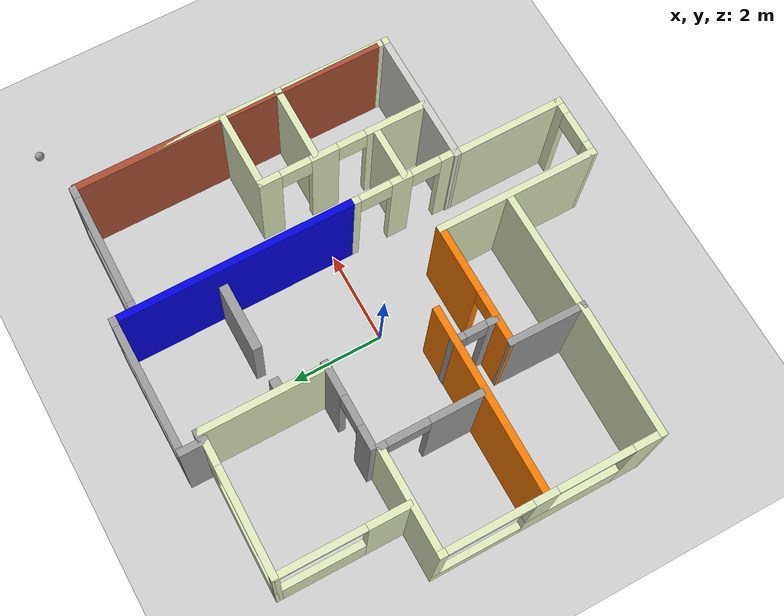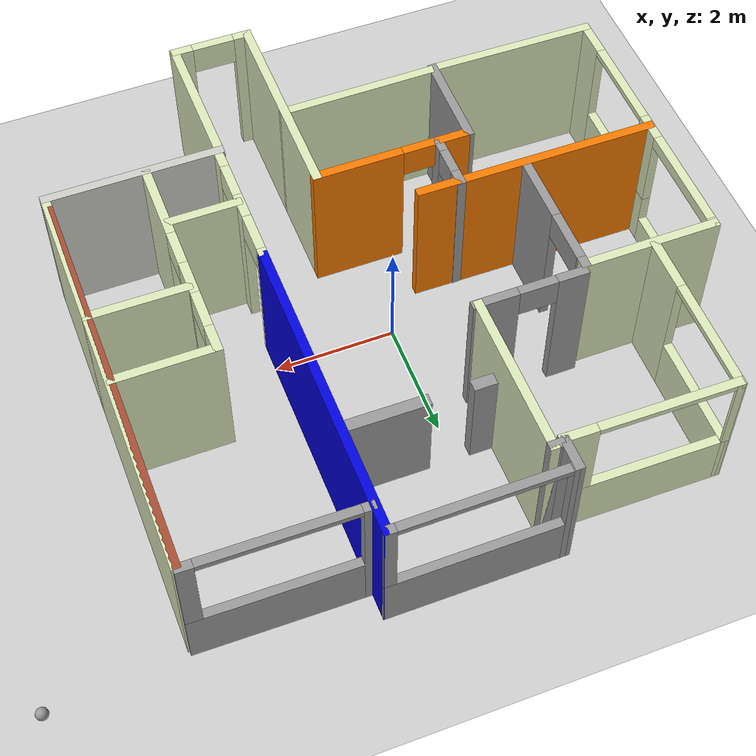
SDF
<sdf version="1.6">
 <world name="default">
  <model name="ground_plane">
   <static>1</static>
   <link name="link">
    <collision name="collision">
     <geometry><plane><normal>0 0 1</normal><size>100 100</size></plane></geometry>
     <surface><friction><ode><mu>100</mu><mu2>50</mu2></ode></friction></surface>
    </collision>
    <visual name="visual">
     <cast_shadows>0</cast_shadows>
     <geometry><plane><normal>0 0 1</normal><size>100 100</size></plane></geometry>
     <material>
      <script><uri>file://media/materials/scripts/gazebo.material</uri><name>Gazebo/Grey</name></script>
     </material>
    </visual>
   </link>
  </model>
  <model name="condo-2">
   <pose>0.03173 -0.150345 0 0 -0 0</pose>
   <link name="Wall_1">
    <collision name="Wall_1_Collision">
     <geometry><box><size>6.75 0.15 2.5</size></box></geometry>
     <pose>0 0 1.25 0 -0 0</pose>
    </collision>
    <visual name="Wall_1_Visual">
     <pose>0 0 1.25 0 -0 0</pose>
     <geometry><box><size>6.75 0.15 2.5</size></box></geometry>
     <material>
      <script><uri>file://media/materials/scripts/gazebo.material</uri><name>Gazebo/Bricks</name></script>
      <ambient>1 1 1 1</ambient>
     </material>
     <meta><layer>0</layer></meta>
    </visual>
    <pose>4.74151 1.02898 0 0 0 -1.5708</pose>
   </link>
   <link name="Wall_10">
    <collision name="Wall_10_Collision">
     <geometry><box><size>1.68411 0.15 2.5</size></box></geometry>
     <pose>0 0 1.25 0 -0 0</pose>
    </collision>
    <visual name="Wall_10_Visual">
     <pose>0 0 1.25 0 -0 0</pose>
     <geometry><box><size>1.68411 0.15 2.5</size></box></geometry>
     <material>
      <script><uri>file://media/materials/scripts/gazebo.material</uri><name>Gazebo/Grey</name></script>
      <ambient>1 1 1 1</ambient>
     </material>
     <meta><layer>0</layer></meta>
    </visual>
    <pose>-1.96752 -2.21739 0 0 0 -1.58289</pose>
   </link>
   <link name="Wall_11">
    <collision name="Wall_11_Collision">
     <geometry><box><size>2.91482 0.15 2.5</size></box></geometry>
     <pose>0 0 1.25 0 -0 0</pose>
    </collision>
    <visual name="Wall_11_Visual">
     <pose>0 0 1.25 0 -0 0</pose>
     <geometry><box><size>2.91482 0.15 2.5</size></box></geometry>
     <material>
      <script><uri>file://media/materials/scripts/gazebo.material</uri><name>Gazebo/Grey</name></script>
      <ambient>0.854902 0.901961 0.72549 1</ambient>
     </material>
     <meta><layer>0</layer></meta>
    </visual>
    <pose>-3.35881 -2.96461 0 0 -0 3.12724</pose>
   </link>
   <link name="Wall_12">
    <pose>-4.74082 -0.637006 0 0 -0 1.5708</pose>
    <visual name="Wall_12_Visual_0">
     <pose>-2.04278 0 1.25 0 -0 0</pose>
     <geometry><box><size>0.679963 0.15 2.5</size></box></geometry>
     <material>
      <script><uri>file://media/materials/scripts/gazebo.material</uri><name>Gazebo/Grey</name></script>
      <ambient>0.854902 0.901961 0.72549 1</ambient>
     </material>
     <meta><layer>0</layer></meta>
    </visual>
    <collision name="Wall_12_Collision_0">
     <geometry><box><size>0.679963 0.15 2.5</size></box></geometry>
     <pose>-2.04278 0 1.25 0 -0 0</pose>
    </collision>
    <visual name="Wall_12_Visual_1">
     <pose>-0.651319 0 0.5 0 -0 0</pose>
     <geometry><box><size>2.10296 0.15 1</size></box></geometry>
     <material>
      <script><uri>file://media/materials/scripts/gazebo.material</uri><name>Gazebo/Grey</name></script>
      <ambient>0.854902 0.901961 0.72549 1</ambient>
     </material>
     <meta><layer>0</layer></meta>
    </visual>
    <collision name="Wall_12_Collision_1">
     <geometry><box><size>2.10296 0.15 1</size></box></geometry>
     <pose>-0.651319 0 0.5 0 -0 0</pose>
    </collision>
    <visual name="Wall_12_Visual_2">
     <pose>1.39146 0 0.25 0 -0 0</pose>
     <geometry><box><size>1.9826 0.15 0.5</size></box></geometry>
     <material>
      <script><uri>file://media/materials/scripts/gazebo.material</uri><name>Gazebo/Grey</name></script>
      <ambient>0.854902 0.901961 0.72549 1</ambient>
     </material>
     <meta><layer>0</layer></meta>
    </visual>
    <collision name="Wall_12_Collision_2">
     <geometry><box><size>1.9826 0.15 0.5</size></box></geometry>
     <pose>1.39146 0 0.25 0 -0 0</pose>
    </collision>
    <visual name="Wall_12_Visual_3">
     <pose>2.29396 0 1.5 0 -0 0</pose>
     <geometry><box><size>0.1776 0.15 2</size></box></geometry>
     <material>
      <script><uri>file://media/materials/scripts/gazebo.material</uri><name>Gazebo/Grey</name></script>
      <ambient>0.854902 0.901961 0.72549 1</ambient>
     </material>
     <meta><layer>0</layer></meta>
    </visual>
    <collision name="Wall_12_Collision_3">
     <geometry><box><size>0.1776 0.15 2</size></box></geometry>
     <pose>2.29396 0 1.5 0 -0 0</pose>
    </collision>
    <visual name="Wall_12_Visual_4">
     <pose>0.152181 0 1.75 0 -0 0</pose>
     <geometry><box><size>0.495963 0.15 1.5</size></box></geometry>
     <material>
      <script><uri>file://media/materials/scripts/gazebo.material</uri><name>Gazebo/Grey</name></script>
      <ambient>0.854902 0.901961 0.72549 1</ambient>
     </material>
     <meta><layer>0</layer></meta>
    </visual>
    <collision name="Wall_12_Collision_4">
     <geometry><box><size>0.495963 0.15 1.5</size></box></geometry>
     <pose>0.152181 0 1.75 0 -0 0</pose>
    </collision>
    <visual name="Wall_12_Visual_5">
     <pose>1.30266 0 2.4 0 -0 0</pose>
     <geometry><box><size>1.805 0.15 0.2</size></box></geometry>
     <material>
      <script><uri>file://media/materials/scripts/gazebo.material</uri><name>Gazebo/Grey</name></script>
      <ambient>0.854902 0.901961 0.72549 1</ambient>
     </material>
     <meta><layer>0</layer></meta>
    </visual>
    <collision name="Wall_12_Collision_5">
     <geometry><box><size>1.805 0.15 0.2</size></box></geometry>
     <pose>1.30266 0 2.4 0 -0 0</pose>
    </collision>
    <visual name="Wall_12_Visual_6">
     <pose>-0.8993 0 2.45 0 -0 0</pose>
     <geometry><box><size>1.607 0.15 0.1</size></box></geometry>
     <material>
      <script><uri>file://media/materials/scripts/gazebo.material</uri><name>Gazebo/Grey</name></script>
      <ambient>0.854902 0.901961 0.72549 1</ambient>
     </material>
     <meta><layer>0</layer></meta>
    </visual>
    <collision name="Wall_12_Collision_6">
     <geometry><box><size>1.607 0.15 0.1</size></box></geometry>
     <pose>-0.8993 0 2.45 0 -0 0</pose>
    </collision>
   </link>
   <link name="Wall_13">
    <collision name="Wall_13_Collision">
     <geometry><box><size>2.34535 0.15 2.5</size></box></geometry>
     <pose>0 0 1.25 0 -0 0</pose>
    </collision>
    <visual name="Wall_13_Visual">
     <pose>0 0 1.25 0 -0 0</pose>
     <geometry><box><size>2.34535 0.15 2.5</size></box></geometry>
     <material>
      <script><uri>file://media/materials/scripts/gazebo.material</uri><name>Gazebo/Grey</name></script>
      <ambient>0.854902 0.901961 0.72549 1</ambient>
     </material>
     <meta><layer>0</layer></meta>
    </visual>
    <pose>-3.64314 1.67076 0 0 -0 0</pose>
   </link>
   <link name="Wall_15">
    <collision name="Wall_15_Collision">
     <geometry><box><size>2.75533 0.15 2.5</size></box></geometry>
     <pose>0 0 1.25 0 -0 0</pose>
    </collision>
    <visual name="Wall_15_Visual">
     <pose>0 0 1.25 0 -0 0</pose>
     <geometry><box><size>2.75533 0.15 2.5</size></box></geometry>
     <material>
      <script><uri>file://media/materials/scripts/gazebo.material</uri><name>Gazebo/Grey</name></script>
      <ambient>0.854902 0.901961 0.72549 1</ambient>
     </material>
     <meta><layer>0</layer></meta>
    </visual>
    <pose>-0.660906 -2.95138 0 0 0 -3.13652</pose>
   </link>
   <link name="Wall_17">
    <collision name="Wall_17_Collision">
     <geometry><box><size>4.10436 0.15 2.5</size></box></geometry>
     <pose>0 0 1.25 0 -0 0</pose>
    </collision>
    <visual name="Wall_17_Visual">
     <pose>0 0 1.25 0 -0 0</pose>
     <geometry><box><size>4.10436 0.15 2.5</size></box></geometry>
     <material>
      <script><uri>file://media/materials/scripts/gazebo.material</uri><name>Gazebo/Grey</name></script>
      <ambient>0.960784 0.478431 0 1</ambient>
     </material>
     <meta><layer>0</layer></meta>
    </visual>
    <pose>-2.75046 -0.537818 0 0 0 -0.006689</pose>
   </link>
   <link name="Wall_20">
    <pose>-3.70266 3.08583 0 0 -0 1.56589</pose>
    <visual name="Wall_20_Visual_0">
     <pose>-0.964016 0 1.25 0 -0 0</pose>
     <geometry><box><size>0.9199 0.15 2.5</size></box></geometry>
     <material>
      <script><uri>file://media/materials/scripts/gazebo.material</uri><name>Gazebo/Grey</name></script>
      <ambient>0.854902 0.901961 0.72549 1</ambient>
     </material>
     <meta><layer>0</layer></meta>
    </visual>
    <collision name="Wall_20_Collision_0">
     <geometry><box><size>0.9199 0.15 2.5</size></box></geometry>
     <pose>-0.964016 0 1.25 0 -0 0</pose>
    </collision>
    <visual name="Wall_20_Visual_1">
     <pose>0.45995 0 0.5 0 -0 0</pose>
     <geometry><box><size>1.92803 0.15 1</size></box></geometry>
     <material>
      <script><uri>file://media/materials/scripts/gazebo.material</uri><name>Gazebo/Grey</name></script>
      <ambient>0.854902 0.901961 0.72549 1</ambient>
     </material>
     <meta><layer>0</layer></meta>
    </visual>
    <collision name="Wall_20_Collision_1">
     <geometry><box><size>1.92803 0.15 1</size></box></geometry>
     <pose>0.45995 0 0.5 0 -0 0</pose>
    </collision>
    <visual name="Wall_20_Visual_2">
     <pose>1.39995 0 1.75 0 -0 0</pose>
     <geometry><box><size>0.048033 0.15 1.5</size></box></geometry>
     <material>
      <script><uri>file://media/materials/scripts/gazebo.material</uri><name>Gazebo/Grey</name></script>
      <ambient>0.854902 0.901961 0.72549 1</ambient>
     </material>
     <meta><layer>0</layer></meta>
    </visual>
    <collision name="Wall_20_Collision_2">
     <geometry><box><size>0.048033 0.15 1.5</size></box></geometry>
     <pose>1.39995 0 1.75 0 -0 0</pose>
    </collision>
    <visual name="Wall_20_Visual_3">
     <pose>0.435934 0 2.45 0 -0 0</pose>
     <geometry><box><size>1.88 0.15 0.1</size></box></geometry>
     <material>
      <script><uri>file://media/materials/scripts/gazebo.material</uri><name>Gazebo/Grey</name></script>
      <ambient>0.854902 0.901961 0.72549 1</ambient>
     </material>
     <meta><layer>0</layer></meta>
    </visual>
    <collision name="Wall_20_Collision_3">
     <geometry><box><size>1.88 0.15 0.1</size></box></geometry>
     <pose>0.435934 0 2.45 0 -0 0</pose>
    </collision>
   </link>
   <link name="Wall_21">
    <pose>-2.31403 4.41494 0 0 0 -0.014353</pose>
    <visual name="Wall_21_Visual_0">
     <pose>-1.44711 0 1.25 0 -0 0</pose>
     <geometry><box><size>0.020096 0.15 2.5</size></box></geometry>
     <material>
      <script><uri>file://media/materials/scripts/gazebo.material</uri><name>Gazebo/Grey</name></script>
      <ambient>0.854902 0.901961 0.72549 1</ambient>
     </material>
     <meta><layer>0</layer></meta>
    </visual>
    <collision name="Wall_21_Collision_0">
     <geometry><box><size>0.020096 0.15 2.5</size></box></geometry>
     <pose>-1.44711 0 1.25 0 -0 0</pose>
    </collision>
    <visual name="Wall_21_Visual_1">
     <pose>0.010048 0 0.5 0 -0 0</pose>
     <geometry><box><size>2.89421 0.15 1</size></box></geometry>
     <material>
      <script><uri>file://media/materials/scripts/gazebo.material</uri><name>Gazebo/Grey</name></script>
      <ambient>0.854902 0.901961 0.72549 1</ambient>
     </material>
     <meta><layer>0</layer></meta>
    </visual>
    <collision name="Wall_21_Collision_1">
     <geometry><box><size>2.89421 0.15 1</size></box></geometry>
     <pose>0.010048 0 0.5 0 -0 0</pose>
    </collision>
    <visual name="Wall_21_Visual_2">
     <pose>1.15505 0 1.75 0 -0 0</pose>
     <geometry><box><size>0.604214 0.15 1.5</size></box></geometry>
     <material>
      <script><uri>file://media/materials/scripts/gazebo.material</uri><name>Gazebo/Grey</name></script>
      <ambient>0.854902 0.901961 0.72549 1</ambient>
     </material>
     <meta><layer>0</layer></meta>
    </visual>
    <collision name="Wall_21_Collision_2">
     <geometry><box><size>0.604214 0.15 1.5</size></box></geometry>
     <pose>1.15505 0 1.75 0 -0 0</pose>
    </collision>
    <visual name="Wall_21_Visual_3">
     <pose>-0.292059 0 2.45 0 -0 0</pose>
     <geometry><box><size>2.29 0.15 0.1</size></box></geometry>
     <material>
      <script><uri>file://media/materials/scripts/gazebo.material</uri><name>Gazebo/Grey</name></script>
      <ambient>0.854902 0.901961 0.72549 1</ambient>
     </material>
     <meta><layer>0</layer></meta>
    </visual>
    <collision name="Wall_21_Collision_3">
     <geometry><box><size>2.29 0.15 0.1</size></box></geometry>
     <pose>-0.292059 0 2.45 0 -0 0</pose>
    </collision>
   </link>
   <link name="Wall_22">
    <collision name="Wall_22_Collision">
     <geometry><box><size>0.6261 0.15 2.5</size></box></geometry>
     <pose>0 0 1.25 0 -0 0</pose>
    </collision>
    <visual name="Wall_22_Visual">
     <pose>0 0 1.25 0 -0 0</pose>
     <geometry><box><size>0.6261 0.15 2.5</size></box></geometry>
     <material>
      <script><uri>file://media/materials/scripts/gazebo.material</uri><name>Gazebo/Grey</name></script>
      <ambient>1 1 1 1</ambient>
     </material>
     <meta><layer>0</layer></meta>
    </visual>
    <pose>-0.932018 4.63316 0 0 -0 1.5708</pose>
   </link>
   <link name="Wall_23">
    <pose>0.492994 4.87136 0 0 -0 0.000105</pose>
    <visual name="Wall_23_Visual_0">
     <pose>-1.41577 0 1.25 0 -0 0</pose>
     <geometry><box><size>0.168462 0.15 2.5</size></box></geometry>
     <material>
      <script><uri>file://media/materials/scripts/gazebo.material</uri><name>Gazebo/Grey</name></script>
      <ambient>1 1 1 1</ambient>
     </material>
     <meta><layer>0</layer></meta>
    </visual>
    <collision name="Wall_23_Collision_0">
     <geometry><box><size>0.168462 0.15 2.5</size></box></geometry>
     <pose>-1.41577 0 1.25 0 -0 0</pose>
    </collision>
    <visual name="Wall_23_Visual_1">
     <pose>0.084231 0 0.5 0 -0 0</pose>
     <geometry><box><size>2.83154 0.15 1</size></box></geometry>
     <material>
      <script><uri>file://media/materials/scripts/gazebo.material</uri><name>Gazebo/Grey</name></script>
      <ambient>1 1 1 1</ambient>
     </material>
     <meta><layer>0</layer></meta>
    </visual>
    <collision name="Wall_23_Collision_1">
     <geometry><box><size>2.83154 0.15 1</size></box></geometry>
     <pose>0.084231 0 0.5 0 -0 0</pose>
    </collision>
    <visual name="Wall_23_Visual_2">
     <pose>1.39923 0 1.75 0 -0 0</pose>
     <geometry><box><size>0.201538 0.15 1.5</size></box></geometry>
     <material>
      <script><uri>file://media/materials/scripts/gazebo.material</uri><name>Gazebo/Grey</name></script>
      <ambient>1 1 1 1</ambient>
     </material>
     <meta><layer>0</layer></meta>
    </visual>
    <collision name="Wall_23_Collision_2">
     <geometry><box><size>0.201538 0.15 1.5</size></box></geometry>
     <pose>1.39923 0 1.75 0 -0 0</pose>
    </collision>
    <visual name="Wall_23_Visual_3">
     <pose>-0.016538 0 2.45 0 -0 0</pose>
     <geometry><box><size>2.63 0.15 0.1</size></box></geometry>
     <material>
      <script><uri>file://media/materials/scripts/gazebo.material</uri><name>Gazebo/Grey</name></script>
      <ambient>1 1 1 1</ambient>
     </material>
     <meta><layer>0</layer></meta>
    </visual>
    <collision name="Wall_23_Collision_3">
     <geometry><box><size>2.63 0.15 0.1</size></box></geometry>
     <pose>-0.016538 0 2.45 0 -0 0</pose>
    </collision>
   </link>
   <link name="Wall_24">
    <collision name="Wall_24_Collision">
     <geometry><box><size>5.25485 0.15 2.5</size></box></geometry>
     <pose>0 0 1.25 0 -0 0</pose>
    </collision>
    <visual name="Wall_24_Visual">
     <pose>0 0 1.25 0 -0 0</pose>
     <geometry><box><size>5.25485 0.15 2.5</size></box></geometry>
     <material>
      <script><uri>file://media/materials/scripts/gazebo.material</uri><name>Gazebo/Grey</name></script>
      <ambient>0 0 0.866667 1</ambient>
     </material>
     <meta><layer>0</layer></meta>
    </visual>
    <pose>1.92151 2.31901 0 0 0 -1.56943</pose>
   </link>
   <link name="Wall_28">
    <pose>1.92458 -1.35359 0 0 0 -1.5708</pose>
    <visual name="Wall_28_Visual_0">
     <pose>-1.04991 0 1.25 0 -0 0</pose>
     <geometry><box><size>0.150175 0.15 2.5</size></box></geometry>
     <material>
      <script><uri>file://media/materials/scripts/gazebo.material</uri><name>Gazebo/Grey</name></script>
      <ambient>0.854902 0.901961 0.72549 1</ambient>
     </material>
     <meta><layer>0</layer></meta>
    </visual>
    <collision name="Wall_28_Collision_0">
     <geometry><box><size>0.150175 0.15 2.5</size></box></geometry>
     <pose>-1.04991 0 1.25 0 -0 0</pose>
    </collision>
    <visual name="Wall_28_Visual_1">
     <pose>-0.055337 0 1.25 0 -0 0</pose>
     <geometry><box><size>0.462175 0.15 2.5</size></box></geometry>
     <material>
      <script><uri>file://media/materials/scripts/gazebo.material</uri><name>Gazebo/Grey</name></script>
      <ambient>0.854902 0.901961 0.72549 1</ambient>
     </material>
     <meta><layer>0</layer></meta>
    </visual>
    <collision name="Wall_28_Collision_1">
     <geometry><box><size>0.462175 0.15 2.5</size></box></geometry>
     <pose>-0.055337 0 1.25 0 -0 0</pose>
    </collision>
    <visual name="Wall_28_Visual_2">
     <pose>0.968125 0 1.25 0 -0 0</pose>
     <geometry><box><size>0.31375 0.15 2.5</size></box></geometry>
     <material>
      <script><uri>file://media/materials/scripts/gazebo.material</uri><name>Gazebo/Grey</name></script>
      <ambient>0.854902 0.901961 0.72549 1</ambient>
     </material>
     <meta><layer>0</layer></meta>
    </visual>
    <collision name="Wall_28_Collision_2">
     <geometry><box><size>0.31375 0.15 2.5</size></box></geometry>
     <pose>0.968125 0 1.25 0 -0 0</pose>
    </collision>
    <visual name="Wall_28_Visual_3">
     <pose>-0.630625 0 2.25 0 -0 0</pose>
     <geometry><box><size>0.6884 0.15 0.5</size></box></geometry>
     <material>
      <script><uri>file://media/materials/scripts/gazebo.material</uri><name>Gazebo/Grey</name></script>
      <ambient>0.854902 0.901961 0.72549 1</ambient>
     </material>
     <meta><layer>0</layer></meta>
    </visual>
    <collision name="Wall_28_Collision_3">
     <geometry><box><size>0.6884 0.15 0.5</size></box></geometry>
     <pose>-0.630625 0 2.25 0 -0 0</pose>
    </collision>
    <visual name="Wall_28_Visual_4">
     <pose>0.4935 0 2.25 0 -0 0</pose>
     <geometry><box><size>0.6355 0.15 0.5</size></box></geometry>
     <material>
      <script><uri>file://media/materials/scripts/gazebo.material</uri><name>Gazebo/Grey</name></script>
      <ambient>0.854902 0.901961 0.72549 1</ambient>
     </material>
     <meta><layer>0</layer></meta>
    </visual>
    <collision name="Wall_28_Collision_4">
     <geometry><box><size>0.6355 0.15 0.5</size></box></geometry>
     <pose>0.4935 0 2.25 0 -0 0</pose>
    </collision>
   </link>
   <link name="Wall_3">
    <collision name="Wall_3_Collision">
     <geometry><box><size>7 0.15 2.5</size></box></geometry>
     <pose>0 0 1.25 0 -0 0</pose>
    </collision>
    <visual name="Wall_3_Visual">
     <pose>0 0 1.25 0 -0 0</pose>
     <geometry><box><size>7 0.15 2.5</size></box></geometry>
     <material>
      <script><uri>file://media/materials/scripts/gazebo.material</uri><name>Gazebo/Grey</name></script>
      <ambient>0.854902 0.901961 0.72549 1</ambient>
     </material>
     <meta><layer>0</layer></meta>
    </visual>
    <pose>4.74151 0.903982 0 0 0 -1.5708</pose>
   </link>
   <link name="Wall_31">
    <pose>3.34627 4.41494 0 0 0 -0.014492</pose>
    <visual name="Wall_31_Visual_0">
     <pose>-1.34195 0 1.25 0 -0 0</pose>
     <geometry><box><size>0.203956 0.15 2.5</size></box></geometry>
     <material>
      <script><uri>file://media/materials/scripts/gazebo.material</uri><name>Gazebo/Grey</name></script>
      <ambient>1 1 1 1</ambient>
     </material>
     <meta><layer>0</layer></meta>
    </visual>
    <collision name="Wall_31_Collision_0">
     <geometry><box><size>0.203956 0.15 2.5</size></box></geometry>
     <pose>-1.34195 0 1.25 0 -0 0</pose>
    </collision>
    <visual name="Wall_31_Visual_1">
     <pose>0.101978 0 0.5 0 -0 0</pose>
     <geometry><box><size>2.68391 0.15 1</size></box></geometry>
     <material>
      <script><uri>file://media/materials/scripts/gazebo.material</uri><name>Gazebo/Grey</name></script>
      <ambient>1 1 1 1</ambient>
     </material>
     <meta><layer>0</layer></meta>
    </visual>
    <collision name="Wall_31_Collision_1">
     <geometry><box><size>2.68391 0.15 1</size></box></geometry>
     <pose>0.101978 0 0.5 0 -0 0</pose>
    </collision>
    <visual name="Wall_31_Visual_2">
     <pose>1.30698 0 1.75 0 -0 0</pose>
     <geometry><box><size>0.273907 0.15 1.5</size></box></geometry>
     <material>
      <script><uri>file://media/materials/scripts/gazebo.material</uri><name>Gazebo/Grey</name></script>
      <ambient>1 1 1 1</ambient>
     </material>
     <meta><layer>0</layer></meta>
    </visual>
    <collision name="Wall_31_Collision_2">
     <geometry><box><size>0.273907 0.15 1.5</size></box></geometry>
     <pose>1.30698 0 1.75 0 -0 0</pose>
    </collision>
    <visual name="Wall_31_Visual_3">
     <pose>-0.034975 0 2.45 0 -0 0</pose>
     <geometry><box><size>2.41 0.15 0.1</size></box></geometry>
     <material>
      <script><uri>file://media/materials/scripts/gazebo.material</uri><name>Gazebo/Grey</name></script>
      <ambient>1 1 1 1</ambient>
     </material>
     <meta><layer>0</layer></meta>
    </visual>
    <collision name="Wall_31_Collision_3">
     <geometry><box><size>2.41 0.15 0.1</size></box></geometry>
     <pose>-0.034975 0 2.45 0 -0 0</pose>
    </collision>
   </link>
   <link name="Wall_33">
    <collision name="Wall_33_Collision">
     <geometry><box><size>1.25 0.15 2.5</size></box></geometry>
     <pose>0 0 1.25 0 -0 0</pose>
    </collision>
    <visual name="Wall_33_Visual">
     <pose>0 0 1.25 0 -0 0</pose>
     <geometry><box><size>1.25 0.15 2.5</size></box></geometry>
     <material>
      <script><uri>file://media/materials/scripts/gazebo.material</uri><name>Gazebo/Grey</name></script>
      <ambient>0.854902 0.901961 0.72549 1</ambient>
     </material>
     <meta><layer>0</layer></meta>
    </visual>
    <pose>2.51426 -1.38422 0 0 -0 0</pose>
   </link>
   <link name="Wall_4">
    <collision name="Wall_4_Collision">
     <geometry><box><size>3 0.15 2.5</size></box></geometry>
     <pose>0 0 1.25 0 -0 0</pose>
    </collision>
    <visual name="Wall_4_Visual">
     <pose>0 0 1.25 0 -0 0</pose>
     <geometry><box><size>3 0.15 2.5</size></box></geometry>
     <material>
      <script><uri>file://media/materials/scripts/gazebo.material</uri><name>Gazebo/CeilingTiled</name></script>
      <ambient>1 1 1 1</ambient>
     </material>
     <meta><layer>0</layer></meta>
    </visual>
    <pose>3.31651 -2.52102 0 0 -0 3.14159</pose>
   </link>
   <link name="Wall_43">
    <pose>3.11483 -0.655443 0 0 -0 1.5708</pose>
    <visual name="Wall_43_Visual_0">
     <pose>-1.19296 0 1.25 0 -0 0</pose>
     <geometry><box><size>1.36409 0.15 2.5</size></box></geometry>
     <material>
      <script><uri>file://media/materials/scripts/gazebo.material</uri><name>Gazebo/Grey</name></script>
      <ambient>0.854902 0.901961 0.72549 1</ambient>
     </material>
     <meta><layer>0</layer></meta>
    </visual>
    <collision name="Wall_43_Collision_0">
     <geometry><box><size>1.36409 0.15 2.5</size></box></geometry>
     <pose>-1.19296 0 1.25 0 -0 0</pose>
    </collision>
    <visual name="Wall_43_Visual_1">
     <pose>0.415188 0 1.25 0 -0 0</pose>
     <geometry><box><size>0.60765 0.15 2.5</size></box></geometry>
     <material>
      <script><uri>file://media/materials/scripts/gazebo.material</uri><name>Gazebo/Grey</name></script>
      <ambient>0.854902 0.901961 0.72549 1</ambient>
     </material>
     <meta><layer>0</layer></meta>
    </visual>
    <collision name="Wall_43_Collision_1">
     <geometry><box><size>0.60765 0.15 2.5</size></box></geometry>
     <pose>0.415188 0 1.25 0 -0 0</pose>
    </collision>
    <visual name="Wall_43_Visual_2">
     <pose>1.62798 0 1.25 0 -0 0</pose>
     <geometry><box><size>0.494037 0.15 2.5</size></box></geometry>
     <material>
      <script><uri>file://media/materials/scripts/gazebo.material</uri><name>Gazebo/Grey</name></script>
      <ambient>0.854902 0.901961 0.72549 1</ambient>
     </material>
     <meta><layer>0</layer></meta>
    </visual>
    <collision name="Wall_43_Collision_2">
     <geometry><box><size>0.494037 0.15 2.5</size></box></geometry>
     <pose>1.62798 0 1.25 0 -0 0</pose>
    </collision>
    <visual name="Wall_43_Visual_3">
     <pose>-0.199775 0 2.25 0 -0 0</pose>
     <geometry><box><size>0.622275 0.15 0.5</size></box></geometry>
     <material>
      <script><uri>file://media/materials/scripts/gazebo.material</uri><name>Gazebo/Grey</name></script>
      <ambient>0.854902 0.901961 0.72549 1</ambient>
     </material>
     <meta><layer>0</layer></meta>
    </visual>
    <collision name="Wall_43_Collision_3">
     <geometry><box><size>0.622275 0.15 0.5</size></box></geometry>
     <pose>-0.199775 0 2.25 0 -0 0</pose>
    </collision>
    <visual name="Wall_43_Visual_4">
     <pose>1.04999 0 2.25 0 -0 0</pose>
     <geometry><box><size>0.66195 0.15 0.5</size></box></geometry>
     <material>
      <script><uri>file://media/materials/scripts/gazebo.material</uri><name>Gazebo/Grey</name></script>
      <ambient>0.854902 0.901961 0.72549 1</ambient>
     </material>
     <meta><layer>0</layer></meta>
    </visual>
    <collision name="Wall_43_Collision_4">
     <geometry><box><size>0.66195 0.15 0.5</size></box></geometry>
     <pose>1.04999 0 2.25 0 -0 0</pose>
    </collision>
   </link>
   <link name="Wall_44">
    <collision name="Wall_44_Collision">
     <geometry><box><size>1.75 0.15 2.5</size></box></geometry>
     <pose>0 0 1.25 0 -0 0</pose>
    </collision>
    <visual name="Wall_44_Visual">
     <pose>0 0 1.25 0 -0 0</pose>
     <geometry><box><size>1.75 0.15 2.5</size></box></geometry>
     <material>
      <script><uri>file://media/materials/scripts/gazebo.material</uri><name>Gazebo/Grey</name></script>
      <ambient>0.854902 0.901961 0.72549 1</ambient>
     </material>
     <meta><layer>0</layer></meta>
    </visual>
    <pose>3.91483 1.14456 0 0 -0 0</pose>
   </link>
   <link name="Wall_46">
    <collision name="Wall_46_Collision">
     <geometry><box><size>1.71061 0.15 2.5</size></box></geometry>
     <pose>0 0 1.25 0 -0 0</pose>
    </collision>
    <visual name="Wall_46_Visual">
     <pose>0 0 1.25 0 -0 0</pose>
     <geometry><box><size>1.71061 0.15 2.5</size></box></geometry>
     <material>
      <script><uri>file://media/materials/scripts/gazebo.material</uri><name>Gazebo/Grey</name></script>
      <ambient>0.854902 0.901961 0.72549 1</ambient>
     </material>
     <meta><layer>0</layer></meta>
    </visual>
    <pose>3.96123 -0.081556 0 0 0 -0.008474</pose>
   </link>
   <link name="Wall_48">
    <pose>-1.43457 -0.962818 0 0 0 -1.5708</pose>
    <visual name="Wall_48_Visual_0">
     <pose>-0.353569 0 1.25 0 -0 0</pose>
     <geometry><box><size>0.292862 0.15 2.5</size></box></geometry>
     <material>
      <script><uri>file://media/materials/scripts/gazebo.material</uri><name>Gazebo/Grey</name></script>
      <ambient>1 1 1 1</ambient>
     </material>
     <meta><layer>0</layer></meta>
    </visual>
    <collision name="Wall_48_Collision_0">
     <geometry><box><size>0.292862 0.15 2.5</size></box></geometry>
     <pose>-0.353569 0 1.25 0 -0 0</pose>
    </collision>
    <visual name="Wall_48_Visual_1">
     <pose>0.378219 0 1.25 0 -0 0</pose>
     <geometry><box><size>0.243563 0.15 2.5</size></box></geometry>
     <material>
      <script><uri>file://media/materials/scripts/gazebo.material</uri><name>Gazebo/Grey</name></script>
      <ambient>1 1 1 1</ambient>
     </material>
     <meta><layer>0</layer></meta>
    </visual>
    <collision name="Wall_48_Collision_1">
     <geometry><box><size>0.243563 0.15 2.5</size></box></geometry>
     <pose>0.378219 0 1.25 0 -0 0</pose>
    </collision>
    <visual name="Wall_48_Visual_2">
     <pose>0.02465 0 2.25 0 -0 0</pose>
     <geometry><box><size>0.463575 0.15 0.5</size></box></geometry>
     <material>
      <script><uri>file://media/materials/scripts/gazebo.material</uri><name>Gazebo/Grey</name></script>
      <ambient>1 1 1 1</ambient>
     </material>
     <meta><layer>0</layer></meta>
    </visual>
    <collision name="Wall_48_Collision_2">
     <geometry><box><size>0.463575 0.15 0.5</size></box></geometry>
     <pose>0.02465 0 2.25 0 -0 0</pose>
    </collision>
   </link>
   <link name="Wall_5">
    <collision name="Wall_5_Collision">
     <geometry><box><size>2.5 0.15 2.5</size></box></geometry>
     <pose>0 0 1.25 0 -0 0</pose>
    </collision>
    <visual name="Wall_5_Visual">
     <pose>0 0 1.25 0 -0 0</pose>
     <geometry><box><size>2.5 0.15 2.5</size></box></geometry>
     <material>
      <script><uri>file://media/materials/scripts/gazebo.material</uri><name>Gazebo/Grey</name></script>
      <ambient>0.854902 0.901961 0.72549 1</ambient>
     </material>
     <meta><layer>0</layer></meta>
    </visual>
    <pose>1.89812 -3.69602 0 0 0 -1.56517</pose>
   </link>
   <link name="Wall_50">
    <pose>-2.54547 0.620757 0 0 0 -1.5708</pose>
    <visual name="Wall_50_Visual_0">
     <pose>-1.02155 0 1.25 0 -0 0</pose>
     <geometry><box><size>0.2069 0.15 2.5</size></box></geometry>
     <material>
      <script><uri>file://media/materials/scripts/gazebo.material</uri><name>Gazebo/Grey</name></script>
      <ambient>1 1 1 1</ambient>
     </material>
     <meta><layer>0</layer></meta>
    </visual>
    <collision name="Wall_50_Collision_0">
     <geometry><box><size>0.2069 0.15 2.5</size></box></geometry>
     <pose>-1.02155 0 1.25 0 -0 0</pose>
    </collision>
    <visual name="Wall_50_Visual_1">
     <pose>0.55345 0 1.25 0 -0 0</pose>
     <geometry><box><size>1.1431 0.15 2.5</size></box></geometry>
     <material>
      <script><uri>file://media/materials/scripts/gazebo.material</uri><name>Gazebo/Grey</name></script>
      <ambient>1 1 1 1</ambient>
     </material>
     <meta><layer>0</layer></meta>
    </visual>
    <collision name="Wall_50_Collision_1">
     <geometry><box><size>1.1431 0.15 2.5</size></box></geometry>
     <pose>0.55345 0 1.25 0 -0 0</pose>
    </collision>
    <visual name="Wall_50_Visual_2">
     <pose>-0.4681 0 2.25 0 -0 0</pose>
     <geometry><box><size>0.9 0.15 0.5</size></box></geometry>
     <material>
      <script><uri>file://media/materials/scripts/gazebo.material</uri><name>Gazebo/Grey</name></script>
      <ambient>1 1 1 1</ambient>
     </material>
     <meta><layer>0</layer></meta>
    </visual>
    <collision name="Wall_50_Collision_2">
     <geometry><box><size>0.9 0.15 0.5</size></box></geometry>
     <pose>-0.4681 0 2.25 0 -0 0</pose>
    </collision>
   </link>
   <link name="Wall_53">
    <collision name="Wall_53_Collision">
     <geometry><box><size>2.795 0.15 2.5</size></box></geometry>
     <pose>0 0 1.25 0 -0 0</pose>
    </collision>
    <visual name="Wall_53_Visual">
     <pose>0 0 1.25 0 -0 0</pose>
     <geometry><box><size>2.795 0.15 2.5</size></box></geometry>
     <material>
      <script><uri>file://media/materials/scripts/gazebo.material</uri><name>Gazebo/Grey</name></script>
      <ambient>0.854902 0.901961 0.72549 1</ambient>
     </material>
     <meta><layer>0</layer></meta>
    </visual>
    <pose>-0.746868 3.12551 0 0 -0 1.5708</pose>
   </link>
   <link name="Wall_54">
    <collision name="Wall_54_Collision">
     <geometry><box><size>0.256623 0.15 2.5</size></box></geometry>
     <pose>0 0 1.25 0 -0 0</pose>
    </collision>
    <visual name="Wall_54_Visual">
     <pose>0 0 1.25 0 -0 0</pose>
     <geometry><box><size>0.256623 0.15 2.5</size></box></geometry>
     <material>
      <script><uri>file://media/materials/scripts/gazebo.material</uri><name>Gazebo/Grey</name></script>
      <ambient>1 1 1 1</ambient>
     </material>
     <meta><layer>0</layer></meta>
    </visual>
    <pose>-0.799768 4.44801 0 0 -0 3.14159</pose>
   </link>
   <link name="Wall_56">
    <pose>-1.58666 1.78978 0 0 -0 3.14159</pose>
    <visual name="Wall_56_Visual_0">
     <pose>-0.573337 0 1.25 0 -0 0</pose>
     <geometry><box><size>0.762449 0.15 2.5</size></box></geometry>
     <material>
      <script><uri>file://media/materials/scripts/gazebo.material</uri><name>Gazebo/Grey</name></script>
      <ambient>1 1 1 1</ambient>
     </material>
     <meta><layer>0</layer></meta>
    </visual>
    <collision name="Wall_56_Collision_0">
     <geometry><box><size>0.762449 0.15 2.5</size></box></geometry>
     <pose>-0.573337 0 1.25 0 -0 0</pose>
    </collision>
    <visual name="Wall_56_Visual_1">
     <pose>0.698975 0 1.25 0 -0 0</pose>
     <geometry><box><size>0.511174 0.15 2.5</size></box></geometry>
     <material>
      <script><uri>file://media/materials/scripts/gazebo.material</uri><name>Gazebo/Grey</name></script>
      <ambient>1 1 1 1</ambient>
     </material>
     <meta><layer>0</layer></meta>
    </visual>
    <collision name="Wall_56_Collision_1">
     <geometry><box><size>0.511174 0.15 2.5</size></box></geometry>
     <pose>0.698975 0 1.25 0 -0 0</pose>
    </collision>
    <visual name="Wall_56_Visual_2">
     <pose>0.125638 0 2.25 0 -0 0</pose>
     <geometry><box><size>0.6355 0.15 0.5</size></box></geometry>
     <material>
      <script><uri>file://media/materials/scripts/gazebo.material</uri><name>Gazebo/Grey</name></script>
      <ambient>1 1 1 1</ambient>
     </material>
     <meta><layer>0</layer></meta>
    </visual>
    <collision name="Wall_56_Collision_2">
     <geometry><box><size>0.6355 0.15 0.5</size></box></geometry>
     <pose>0.125638 0 2.25 0 -0 0</pose>
    </collision>
   </link>
   <link name="Wall_6">
    <pose>1.26663 -4.86671 0 0 -0 3.13469</pose>
    <visual name="Wall_6_Visual_0">
     <pose>-0.520222 0 1.25 0 -0 0</pose>
     <geometry><box><size>0.359336 0.15 2.5</size></box></geometry>
     <material>
      <script><uri>file://media/materials/scripts/gazebo.material</uri><name>Gazebo/Grey</name></script>
      <ambient>0.854902 0.901961 0.72549 1</ambient>
     </material>
     <meta><layer>0</layer></meta>
    </visual>
    <collision name="Wall_6_Collision_0">
     <geometry><box><size>0.359336 0.15 2.5</size></box></geometry>
     <pose>-0.520222 0 1.25 0 -0 0</pose>
    </collision>
    <visual name="Wall_6_Visual_1">
     <pose>0.53705 0 1.25 0 -0 0</pose>
     <geometry><box><size>0.32568 0.15 2.5</size></box></geometry>
     <material>
      <script><uri>file://media/materials/scripts/gazebo.material</uri><name>Gazebo/Grey</name></script>
      <ambient>0.854902 0.901961 0.72549 1</ambient>
     </material>
     <meta><layer>0</layer></meta>
    </visual>
    <collision name="Wall_6_Collision_1">
     <geometry><box><size>0.32568 0.15 2.5</size></box></geometry>
     <pose>0.53705 0 1.25 0 -0 0</pose>
    </collision>
    <visual name="Wall_6_Visual_2">
     <pose>0.016828 0 2.25 0 -0 0</pose>
     <geometry><box><size>0.714763 0.15 0.5</size></box></geometry>
     <material>
      <script><uri>file://media/materials/scripts/gazebo.material</uri><name>Gazebo/Grey</name></script>
      <ambient>0.854902 0.901961 0.72549 1</ambient>
     </material>
     <meta><layer>0</layer></meta>
    </visual>
    <collision name="Wall_6_Collision_2">
     <geometry><box><size>0.714763 0.15 0.5</size></box></geometry>
     <pose>0.016828 0 2.25 0 -0 0</pose>
    </collision>
   </link>
   <link name="Wall_8">
    <collision name="Wall_8_Collision">
     <geometry><box><size>3.56205 0.15 2.5</size></box></geometry>
     <pose>0 0 1.25 0 -0 0</pose>
    </collision>
    <visual name="Wall_8_Visual">
     <pose>0 0 1.25 0 -0 0</pose>
     <geometry><box><size>3.56205 0.15 2.5</size></box></geometry>
     <material>
      <script><uri>file://media/materials/scripts/gazebo.material</uri><name>Gazebo/Grey</name></script>
      <ambient>0.854902 0.901961 0.72549 1</ambient>
     </material>
     <meta><layer>0</layer></meta>
    </visual>
    <pose>0.641757 -3.15637 0 0 -0 1.5708</pose>
   </link>
   <link name="Wall_9">
    <pose>-0.658243 -1.45034 0 0 -0 3.14159</pose>
    <visual name="Wall_9_Visual_0">
     <pose>-0.606994 0 1.25 0 -0 0</pose>
     <geometry><box><size>1.53601 0.15 2.5</size></box></geometry>
     <material>
      <script><uri>file://media/materials/scripts/gazebo.material</uri><name>Gazebo/Grey</name></script>
      <ambient>0.960784 0.478431 0 1</ambient>
     </material>
     <meta><layer>0</layer></meta>
    </visual>
    <collision name="Wall_9_Collision_0">
     <geometry><box><size>1.53601 0.15 2.5</size></box></geometry>
     <pose>-0.606994 0 1.25 0 -0 0</pose>
    </collision>
    <visual name="Wall_9_Visual_1">
     <pose>1.05269 0 1.25 0 -0 0</pose>
     <geometry><box><size>0.644613 0.15 2.5</size></box></geometry>
     <material>
      <script><uri>file://media/materials/scripts/gazebo.material</uri><name>Gazebo/Grey</name></script>
      <ambient>0.960784 0.478431 0 1</ambient>
     </material>
     <meta><layer>0</layer></meta>
    </visual>
    <collision name="Wall_9_Collision_1">
     <geometry><box><size>0.644613 0.15 2.5</size></box></geometry>
     <pose>1.05269 0 1.25 0 -0 0</pose>
    </collision>
    <visual name="Wall_9_Visual_2">
     <pose>0.4457 0 2.25 0 -0 0</pose>
     <geometry><box><size>0.569375 0.15 0.5</size></box></geometry>
     <material>
      <script><uri>file://media/materials/scripts/gazebo.material</uri><name>Gazebo/Grey</name></script>
      <ambient>0.960784 0.478431 0 1</ambient>
     </material>
     <meta><layer>0</layer></meta>
    </visual>
    <collision name="Wall_9_Collision_2">
     <geometry><box><size>0.569375 0.15 0.5</size></box></geometry>
     <pose>0.4457 0 2.25 0 -0 0</pose>
    </collision>
   </link>
   <link name="Window_2">
    <collision name="Window_2_Collision">
     <geometry><box><size>1.46 0.2 1.8</size></box></geometry>
     <pose>0 0 0.9 0 -0 0</pose>
    </collision>
    <visual name="Window_2_Visual">
     <pose>0 0 0.9 0 -0 0</pose>
     <geometry><box><size>1.46 0.2 1.8</size></box></geometry>
     <material>
      <script><uri>file://media/materials/scripts/gazebo.material</uri><name>Gazebo/Grey</name></script>
     </material>
    </visual>
    <pose>1.10463 2.67586 0 0 0 -0.008197</pose>
   </link>
   <link name="Window_7">
    <collision name="Window_7_Collision">
     <geometry><box><size>0.403 0.2 1.8</size></box></geometry>
     <pose>0 0 0.9 0 -0 0</pose>
    </collision>
    <visual name="Window_7_Visual">
     <pose>0 0 0.9 0 -0 0</pose>
     <geometry><box><size>0.403 0.2 1.8</size></box></geometry>
     <material>
      <script><uri>file://media/materials/scripts/gazebo.material</uri><name>Gazebo/Grey</name></script>
     </material>
    </visual>
    <pose>-0.495593 2.68908 0 0 -0 0</pose>
   </link>
   <static>1</static>
  </model>
  <model name="my_ball">
   <link name="link_0">
    <pose>0 0 0.1 0 -0 0</pose>
    <inertial>
     <mass>1</mass>
     <inertia><ixx>0.1</ixx><ixy>0</ixy><ixz>0</ixz><iyy>0.1</iyy><iyz>0</iyz><izz>0.1</izz></inertia>
    </inertial>
    <visual name="visual">
     <geometry><sphere><radius>0.1</radius></sphere></geometry>
     <material>
      <lighting>1</lighting>
      <script><uri>file://media/materials/scripts/gazebo.material</uri><name>Gazebo/Grey</name></script>
      <shader type="pixel"><normal_map>__default__</normal_map></shader>
      <ambient>1 1 1 1</ambient>
      <diffuse>1 1 1 1</diffuse>
      <specular>1 1 1 1</specular>
      <emissive>1 1 1 1</emissive>
     </material>
    </visual>
    <collision name="collision">
     <geometry><sphere><radius>0.1</radius></sphere></geometry>
     <surface>
      <friction>
       <ode><mu>1</mu><mu2>1</mu2><fdir1>0 0 0</fdir1><slip1>0</slip1><slip2>0</slip2></ode>
       <torsional>
        <coefficient>1</coefficient>
        <patch_radius>0</patch_radius>
        <surface_radius>0</surface_radius>
        <use_patch_radius>1</use_patch_radius>
        <ode><slip>0</slip></ode>
       </torsional>
      </friction>
      <bounce><restitution_coefficient>0</restitution_coefficient><threshold>1e+06</threshold></bounce>
      <contact>
       <collide_without_contact>0</collide_without_contact>
       <collide_without_contact_bitmask>1</collide_without_contact_bitmask>
       <collide_bitmask>1</collide_bitmask>
       <ode>
        <soft_cfm>0</soft_cfm>
        <soft_erp>0.2</soft_erp>
        <kp>1e+13</kp>
        <kd>1</kd>
        <max_vel>0.01</max_vel>
        <min_depth>0</min_depth>
       </ode>
       <bullet>
        <split_impulse>1</split_impulse>
        <split_impulse_penetration_threshold>-0.01</split_impulse_penetration_threshold>
        <soft_cfm>0</soft_cfm>
        <soft_erp>0.2</soft_erp>
        <kp>1e+13</kp>
        <kd>1</kd>
       </bullet>
      </contact>
     </surface>
    </collision>
   </link>
   <static>0</static>
   <pose>7.05443 4.45343 0 0 -0 0</pose>
  </model>
 </world>
</sdf>
